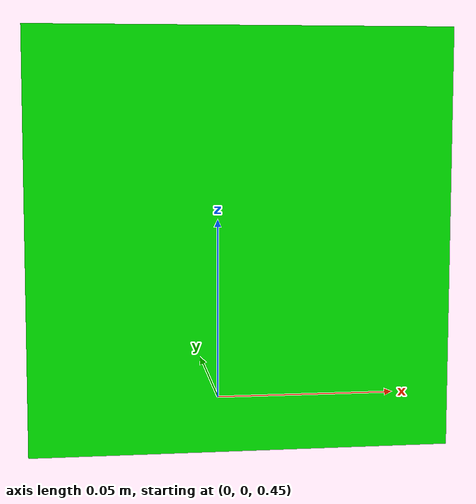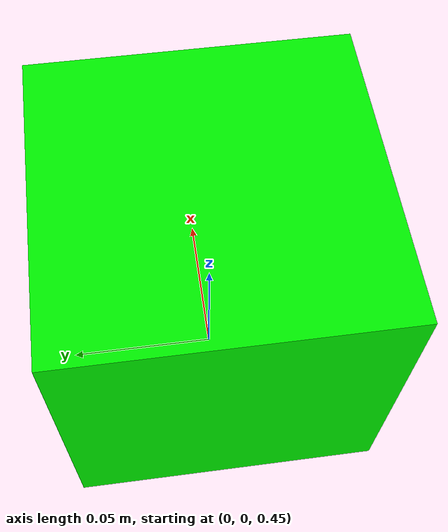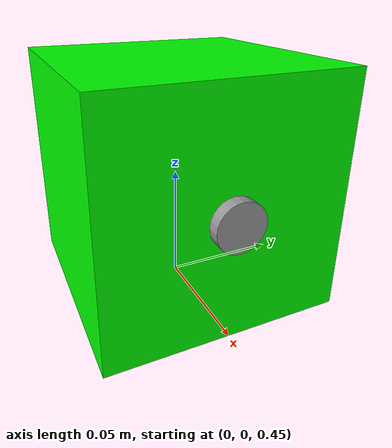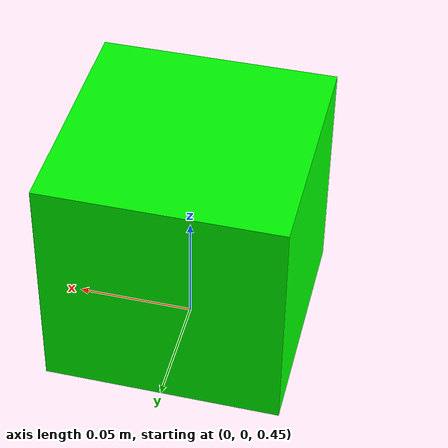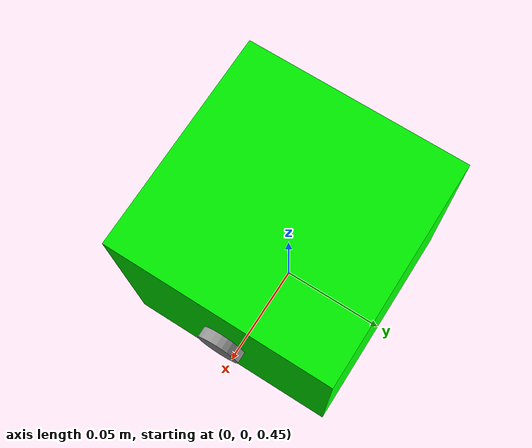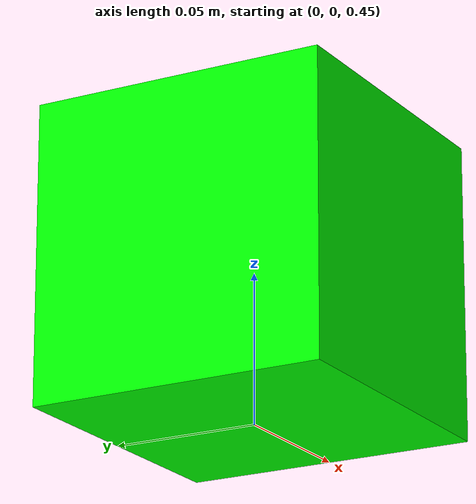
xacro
<?xml version="1.0"?>
<robot name="camera">
    <link name="world"/>
    <joint name="first_joint" type="fixed">
        <parent link="world"/>
        <child link="camera_link"/>
        <origin xyz="0.0 0.0 0.5" rpy="0.0 ${pi/2} 0.0"/>
    </joint>

    <link name="camera_link">
        <visual>
            <origin xyz="0.0 0.0 0.0" rpy="0.0 0.0 0.0"/>
            <geometry>
                <box size="0.1 0.1 0.1"/>
            </geometry>
            <material name="Cyan">
                <color rgba="0 1.0 0 1.0"/>
            </material>
        </visual>
        <collision>
            <origin xyz="0.0 0.0 0.0" rpy="0.0 0.0 0.0"/>
            <geometry>
                <box size="0.1 0.1 0.1"/>
            </geometry>
        </collision>
        <inertial>
        <origin xyz="0.0 0.0 0.0" rpy="0.0 0.0 0.0"/>
            <mass value="0.5"/>
            <inertia ixx="0.01" ixy="0.0" ixz="0.0" iyy="0.01" iyz="0.0" izz="0.01"/>
        </inertial>
    </link>
    <joint name="camera_joint" type="fixed">
        <parent link="camera_link"/>
        <child link="camera_end"/>
        <origin xyz="0.0 0.0 0.05" rpy="0.0 0 0.0"/>
    </joint>

    <link name="camera_end">
        <origin xyz="0.0 0.0 0.0" rpy="0.0 ${pi/2} 0.0"/>
        <visual>
            <geometry>
                <cylinder radius="0.01" length="0.01"/>
            </geometry>
        </visual>
    </link>
    <gazebo reference="camera_end">
        <material>Gazebo/Gray</material>
    <sensor name="depth_camera" type="depth">
        <always_on>true</always_on>
        <update_rate>20</update_rate>
        <visualize>false</visualize>
        <camera>
        <horizontal_fov>1.2</horizontal_fov>
        <image>
            <format>R8G8B8</format>
            <width>640</width>
            <height>360</height>
        </image>
        <clip>
            <near>0.02</near>
            <far>300</far>
        </clip>
        </camera>
        <plugin filename="libgazebo_ros_depth_camera.so" name="depth_camera_controller">
        <imageTopicName>/depth_camera/color/image_raw</imageTopicName>
        <cameraInfoTopicName>/depth_camera/color/camera_info</cameraInfoTopicName>
        <pointCloudTopicName>/depth_camera/point</pointCloudTopicName>
        <depthImageTopicName>/depth_camera/depth/image_raw</depthImageTopicName>
        <depthImageCameraInfoTopicName>/depth_camera/depth/camera_info</depthImageCameraInfoTopicName>
        <pointCloudCutoff>0.4</pointCloudCutoff>
        <cameraName>camera2</cameraName>
        <frameName>depth_camera_link</frameName>
        <updateRate>10.0</updateRate>
        <CxPrime>0.0</CxPrime>
        <Cx>0.0</Cx>
        <Cy>0.0</Cy>
        <focalLength>467.742703</focalLength> <!-- use computed_focal_length -->
        <hackBaseline>0.07</hackBaseline>
        <distortionK1>0.0</distortionK1>
        <distortionK2>0.0</distortionK2>
        <distortionK3>0.0</distortionK3>
        <distortionT1>0.0</distortionT1>
        <distortionT2>0.0</distortionT2>
        </plugin>
    </sensor>
  </gazebo>
</robot>
